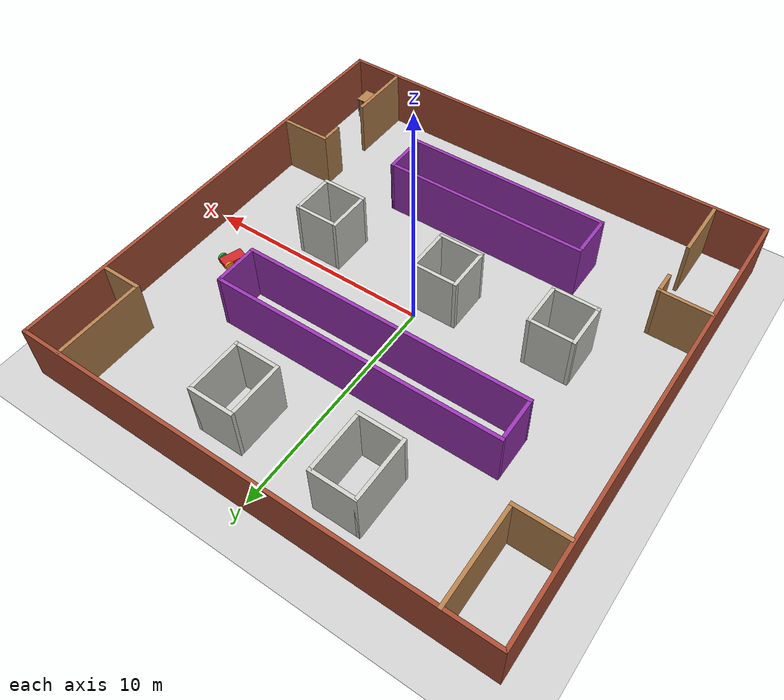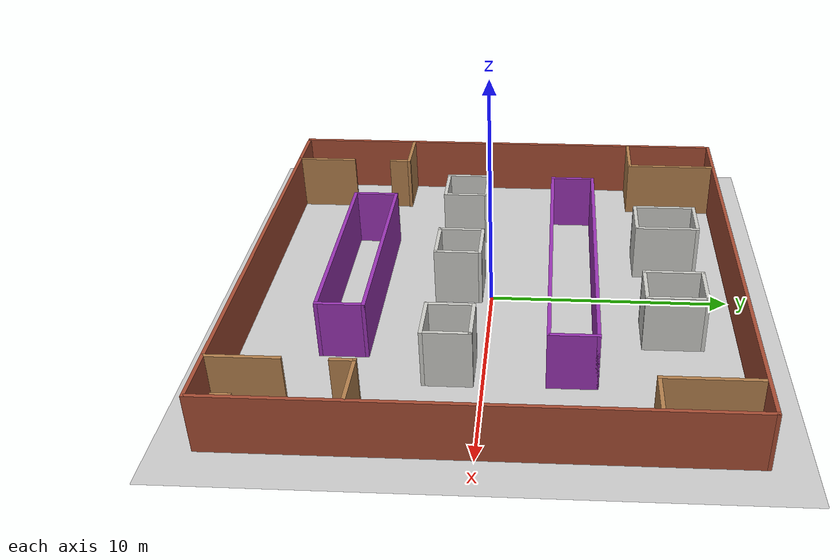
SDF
<sdf version="1.7">
 <world name="default">
  <model name="ground_plane">
   <static>1</static>
   <link name="link">
    <collision name="collision">
     <geometry><plane><normal>0 0 1</normal><size>100 100</size></plane></geometry>
     <surface>
      <contact><collide_bitmask>65535</collide_bitmask></contact>
      <friction><ode><mu>100</mu><mu2>50</mu2></ode></friction>
     </surface>
    </collision>
    <visual name="visual">
     <cast_shadows>0</cast_shadows>
     <geometry><plane><normal>0 0 1</normal><size>100 100</size></plane></geometry>
     <material>
      <script><uri>file://media/materials/scripts/gazebo.material</uri><name>Gazebo/Grey</name></script>
     </material>
    </visual>
   </link>
  </model>
  <model name="house">
   <pose>-0.103922 0.15768 0 0 -0 0</pose>
   <link name="Wall_0">
    <collision name="Wall_0_Collision">
     <geometry><box><size>2 0.15 2.5</size></box></geometry>
     <pose>0 0 1.25 0 -0 0</pose>
    </collision>
    <visual name="Wall_0_Visual">
     <pose>0 0 1.25 0 -0 0</pose>
     <geometry><box><size>2 0.15 2.5</size></box></geometry>
     <material>
      <script><uri>file://media/materials/scripts/gazebo.material</uri><name>Gazebo/CeilingTiled</name></script>
      <ambient>1 1 1 1</ambient>
     </material>
     <meta><layer>0</layer></meta>
    </visual>
    <pose>-0.536584 -2.46607 0 0 -0 0</pose>
   </link>
   <link name="Wall_1">
    <collision name="Wall_1_Collision">
     <geometry><box><size>2 0.15 2.5</size></box></geometry>
     <pose>0 0 1.25 0 -0 0</pose>
    </collision>
    <visual name="Wall_1_Visual">
     <pose>0 0 1.25 0 -0 0</pose>
     <geometry><box><size>2 0.15 2.5</size></box></geometry>
     <material>
      <script><uri>file://media/materials/scripts/gazebo.material</uri><name>Gazebo/CeilingTiled</name></script>
      <ambient>1 1 1 1</ambient>
     </material>
     <meta><layer>0</layer></meta>
    </visual>
    <pose>0.388416 -1.54107 0 0 -0 1.5708</pose>
   </link>
   <link name="Wall_10">
    <collision name="Wall_10_Collision">
     <geometry><box><size>2 0.15 2.5</size></box></geometry>
     <pose>0 0 1.25 0 -0 0</pose>
    </collision>
    <visual name="Wall_10_Visual">
     <pose>0 0 1.25 0 -0 0</pose>
     <geometry><box><size>2 0.15 2.5</size></box></geometry>
     <material>
      <script><uri>file://media/materials/scripts/gazebo.material</uri><name>Gazebo/CeilingTiled</name></script>
      <ambient>1 1 1 1</ambient>
     </material>
     <meta><layer>0</layer></meta>
    </visual>
    <pose>-4.57919 -1.61774 0 0 -0 1.5708</pose>
   </link>
   <link name="Wall_11">
    <collision name="Wall_11_Collision">
     <geometry><box><size>2 0.15 2.5</size></box></geometry>
     <pose>0 0 1.25 0 -0 0</pose>
    </collision>
    <visual name="Wall_11_Visual">
     <pose>0 0 1.25 0 -0 0</pose>
     <geometry><box><size>2 0.15 2.5</size></box></geometry>
     <material>
      <script><uri>file://media/materials/scripts/gazebo.material</uri><name>Gazebo/CeilingTiled</name></script>
      <ambient>1 1 1 1</ambient>
     </material>
     <meta><layer>0</layer></meta>
    </visual>
    <pose>-5.50419 -0.692743 0 0 -0 3.14159</pose>
   </link>
   <link name="Wall_12">
    <collision name="Wall_12_Collision">
     <geometry><box><size>2 0.15 2.5</size></box></geometry>
     <pose>0 0 1.25 0 -0 0</pose>
    </collision>
    <visual name="Wall_12_Visual">
     <pose>0 0 1.25 0 -0 0</pose>
     <geometry><box><size>2 0.15 2.5</size></box></geometry>
     <material>
      <script><uri>file://media/materials/scripts/gazebo.material</uri><name>Gazebo/CeilingTiled</name></script>
      <ambient>1 1 1 1</ambient>
     </material>
     <meta><layer>0</layer></meta>
    </visual>
    <pose>-6.42919 -1.61774 0 0 -0 -1.5708</pose>
   </link>
   <link name="Wall_13">
    <collision name="Wall_13_Collision">
     <geometry><box><size>2 0.15 2.5</size></box></geometry>
     <pose>0 0 1.25 0 -0 0</pose>
    </collision>
    <visual name="Wall_13_Visual">
     <pose>0 0 1.25 0 -0 0</pose>
     <geometry><box><size>2 0.15 2.5</size></box></geometry>
     <material>
      <script><uri>file://media/materials/scripts/gazebo.material</uri><name>Gazebo/CeilingTiled</name></script>
      <ambient>1 1 1 1</ambient>
     </material>
     <meta><layer>0</layer></meta>
    </visual>
    <pose>-5.50419 -2.54274 0 0 -0 0</pose>
   </link>
   <link name="Wall_15">
    <collision name="Wall_15_Collision">
     <geometry><box><size>12.5 0.15 2.5</size></box></geometry>
     <pose>0 0 1.25 0 -0 0</pose>
    </collision>
    <visual name="Wall_15_Visual">
     <pose>0 0 1.25 0 -0 0</pose>
     <geometry><box><size>12.5 0.15 2.5</size></box></geometry>
     <material>
      <lighting>1</lighting>
      <script><uri>file://media/materials/scripts/gazebo.material</uri><name>Gazebo/Purple</name></script>
      <shader type="pixel"><normal_map>__default__</normal_map></shader>
      <ambient>1 0 1 1</ambient>
      <diffuse>1 0 1 1</diffuse>
      <specular>0.1 0.1 0.1 1</specular>
      <emissive>0 0 0 1</emissive>
     </material>
     <meta><layer>0</layer></meta>
    </visual>
    <pose>-0.210973 2.33564 0 0 -0 0</pose>
   </link>
   <link name="Wall_16">
    <collision name="Wall_16_Collision">
     <geometry><box><size>2 0.15 2.5</size></box></geometry>
     <pose>0 0 1.25 0 -0 0</pose>
    </collision>
    <visual name="Wall_16_Visual">
     <pose>0 0 1.25 0 -0 0</pose>
     <geometry><box><size>2 0.15 2.5</size></box></geometry>
     <material>
      <lighting>1</lighting>
      <script><uri>file://media/materials/scripts/gazebo.material</uri><name>Gazebo/Purple</name></script>
      <shader type="pixel"><normal_map>__default__</normal_map></shader>
      <ambient>1 0 1 1</ambient>
      <diffuse>1 0 1 1</diffuse>
      <specular>0.1 0.1 0.1 1</specular>
      <emissive>0 0 0 1</emissive>
     </material>
     <meta><layer>0</layer></meta>
    </visual>
    <pose>5.96403 3.26064 0 0 -0 1.5708</pose>
   </link>
   <link name="Wall_17">
    <collision name="Wall_17_Collision">
     <geometry><box><size>12.5 0.15 2.5</size></box></geometry>
     <pose>0 0 1.25 0 -0 0</pose>
    </collision>
    <visual name="Wall_17_Visual">
     <pose>0 0 1.25 0 -0 0</pose>
     <geometry><box><size>12.5 0.15 2.5</size></box></geometry>
     <material>
      <lighting>1</lighting>
      <script><uri>file://media/materials/scripts/gazebo.material</uri><name>Gazebo/Purple</name></script>
      <shader type="pixel"><normal_map>__default__</normal_map></shader>
      <ambient>1 0 1 1</ambient>
      <diffuse>1 0 1 1</diffuse>
      <specular>0.1 0.1 0.1 1</specular>
      <emissive>0 0 0 1</emissive>
     </material>
     <meta><layer>0</layer></meta>
    </visual>
    <pose>-0.210973 4.18565 0 0 -0 3.14159</pose>
   </link>
   <link name="Wall_18">
    <collision name="Wall_18_Collision">
     <geometry><box><size>2 0.15 2.5</size></box></geometry>
     <pose>0 0 1.25 0 -0 0</pose>
    </collision>
    <visual name="Wall_18_Visual">
     <pose>0 0 1.25 0 -0 0</pose>
     <geometry><box><size>2 0.15 2.5</size></box></geometry>
     <material>
      <lighting>1</lighting>
      <script><uri>file://media/materials/scripts/gazebo.material</uri><name>Gazebo/Purple</name></script>
      <shader type="pixel"><normal_map>__default__</normal_map></shader>
      <ambient>1 0 1 1</ambient>
      <diffuse>1 0 1 1</diffuse>
      <specular>0.1 0.1 0.1 1</specular>
      <emissive>0 0 0 1</emissive>
     </material>
     <meta><layer>0</layer></meta>
    </visual>
    <pose>-6.38597 3.26064 0 0 -0 -1.5708</pose>
   </link>
   <link name="Wall_2">
    <collision name="Wall_2_Collision">
     <geometry><box><size>2 0.15 2.5</size></box></geometry>
     <pose>0 0 1.25 0 -0 0</pose>
    </collision>
    <visual name="Wall_2_Visual">
     <pose>0 0 1.25 0 -0 0</pose>
     <geometry><box><size>2 0.15 2.5</size></box></geometry>
     <material>
      <script><uri>file://media/materials/scripts/gazebo.material</uri><name>Gazebo/CeilingTiled</name></script>
      <ambient>1 1 1 1</ambient>
     </material>
     <meta><layer>0</layer></meta>
    </visual>
    <pose>-0.536584 -0.616074 0 0 -0 3.14159</pose>
   </link>
   <link name="Wall_26">
    <collision name="Wall_26_Collision">
     <geometry><box><size>2 0.15 2.5</size></box></geometry>
     <pose>0 0 1.25 0 -0 0</pose>
    </collision>
    <visual name="Wall_26_Visual">
     <pose>0 0 1.25 0 -0 0</pose>
     <geometry><box><size>2 0.15 2.5</size></box></geometry>
     <material>
      <script><uri>file://media/materials/scripts/gazebo.material</uri><name>Gazebo/CeilingTiled</name></script>
      <ambient>1 1 1 1</ambient>
     </material>
     <meta><layer>0</layer></meta>
    </visual>
    <pose>-2.85415 6.03307 0 0 -0 0</pose>
   </link>
   <link name="Wall_27">
    <collision name="Wall_27_Collision">
     <geometry><box><size>2.75 0.15 2.5</size></box></geometry>
     <pose>0 0 1.25 0 -0 0</pose>
    </collision>
    <visual name="Wall_27_Visual">
     <pose>0 0 1.25 0 -0 0</pose>
     <geometry><box><size>2.75 0.15 2.5</size></box></geometry>
     <material>
      <script><uri>file://media/materials/scripts/gazebo.material</uri><name>Gazebo/CeilingTiled</name></script>
      <ambient>1 1 1 1</ambient>
     </material>
     <meta><layer>0</layer></meta>
    </visual>
    <pose>-1.92915 7.33307 0 0 -0 1.5708</pose>
   </link>
   <link name="Wall_3">
    <collision name="Wall_3_Collision">
     <geometry><box><size>2 0.15 2.5</size></box></geometry>
     <pose>0 0 1.25 0 -0 0</pose>
    </collision>
    <visual name="Wall_3_Visual">
     <pose>0 0 1.25 0 -0 0</pose>
     <geometry><box><size>2 0.15 2.5</size></box></geometry>
     <material>
      <script><uri>file://media/materials/scripts/gazebo.material</uri><name>Gazebo/CeilingTiled</name></script>
      <ambient>1 1 1 1</ambient>
     </material>
     <meta><layer>0</layer></meta>
    </visual>
    <pose>-1.46158 -1.54107 0 0 -0 -1.5708</pose>
   </link>
   <link name="Wall_30">
    <collision name="Wall_30_Collision">
     <geometry><box><size>2.75 0.15 2.5</size></box></geometry>
     <pose>0 0 1.25 0 -0 0</pose>
    </collision>
    <visual name="Wall_30_Visual">
     <pose>0 0 1.25 0 -0 0</pose>
     <geometry><box><size>2.75 0.15 2.5</size></box></geometry>
     <material>
      <script><uri>file://media/materials/scripts/gazebo.material</uri><name>Gazebo/CeilingTiled</name></script>
      <ambient>1 1 1 1</ambient>
     </material>
     <meta><layer>0</layer></meta>
    </visual>
    <pose>-3.77915 7.33307 0 0 -0 1.5708</pose>
   </link>
   <link name="Wall_31">
    <collision name="Wall_31_Collision">
     <geometry><box><size>2 0.15 2.5</size></box></geometry>
     <pose>0 0 1.25 0 -0 0</pose>
    </collision>
    <visual name="Wall_31_Visual">
     <pose>0 0 1.25 0 -0 0</pose>
     <geometry><box><size>2 0.15 2.5</size></box></geometry>
     <material>
      <script><uri>file://media/materials/scripts/gazebo.material</uri><name>Gazebo/CeilingTiled</name></script>
      <ambient>1 1 1 1</ambient>
     </material>
     <meta><layer>0</layer></meta>
    </visual>
    <pose>-2.85415 8.63307 0 0 -0 0</pose>
   </link>
   <link name="Wall_33">
    <collision name="Wall_33_Collision">
     <geometry><box><size>2 0.15 2.5</size></box></geometry>
     <pose>0 0 1.25 0 -0 0</pose>
    </collision>
    <visual name="Wall_33_Visual">
     <pose>0 0 1.25 0 -0 0</pose>
     <geometry><box><size>2 0.15 2.5</size></box></geometry>
     <material>
      <script><uri>file://media/materials/scripts/gazebo.material</uri><name>Gazebo/CeilingTiled</name></script>
      <ambient>1 1 1 1</ambient>
     </material>
     <meta><layer>0</layer></meta>
    </visual>
    <pose>2.46259 6.11826 0 0 -0 0</pose>
   </link>
   <link name="Wall_34">
    <collision name="Wall_34_Collision">
     <geometry><box><size>2.5 0.15 2.5</size></box></geometry>
     <pose>0 0 1.25 0 -0 0</pose>
    </collision>
    <visual name="Wall_34_Visual">
     <pose>0 0 1.25 0 -0 0</pose>
     <geometry><box><size>2.5 0.15 2.5</size></box></geometry>
     <material>
      <script><uri>file://media/materials/scripts/gazebo.material</uri><name>Gazebo/CeilingTiled</name></script>
      <ambient>1 1 1 1</ambient>
     </material>
     <meta><layer>0</layer></meta>
    </visual>
    <pose>3.38759 7.29326 0 0 -0 1.5708</pose>
   </link>
   <link name="Wall_35">
    <collision name="Wall_35_Collision">
     <geometry><box><size>2 0.15 2.5</size></box></geometry>
     <pose>0 0 1.25 0 -0 0</pose>
    </collision>
    <visual name="Wall_35_Visual">
     <pose>0 0 1.25 0 -0 0</pose>
     <geometry><box><size>2 0.15 2.5</size></box></geometry>
     <material>
      <script><uri>file://media/materials/scripts/gazebo.material</uri><name>Gazebo/CeilingTiled</name></script>
      <ambient>1 1 1 1</ambient>
     </material>
     <meta><layer>0</layer></meta>
    </visual>
    <pose>2.46259 8.46826 0 0 -0 3.14159</pose>
   </link>
   <link name="Wall_36">
    <collision name="Wall_36_Collision">
     <geometry><box><size>2.5 0.15 2.5</size></box></geometry>
     <pose>0 0 1.25 0 -0 0</pose>
    </collision>
    <visual name="Wall_36_Visual">
     <pose>0 0 1.25 0 -0 0</pose>
     <geometry><box><size>2.5 0.15 2.5</size></box></geometry>
     <material>
      <script><uri>file://media/materials/scripts/gazebo.material</uri><name>Gazebo/CeilingTiled</name></script>
      <ambient>1 1 1 1</ambient>
     </material>
     <meta><layer>0</layer></meta>
    </visual>
    <pose>1.53759 7.29326 0 0 -0 -1.5708</pose>
   </link>
   <link name="Wall_40">
    <collision name="Wall_40_Collision">
     <geometry><box><size>9 0.15 2.5</size></box></geometry>
     <pose>0 0 1.25 0 -0 0</pose>
    </collision>
    <visual name="Wall_40_Visual">
     <pose>0 0 1.25 0 -0 0</pose>
     <geometry><box><size>9 0.15 2.5</size></box></geometry>
     <material>
      <lighting>1</lighting>
      <script><uri>file://media/materials/scripts/gazebo.material</uri><name>Gazebo/Purple</name></script>
      <shader type="pixel"><normal_map>__default__</normal_map></shader>
      <ambient>1 0 1 1</ambient>
      <diffuse>1 0 1 1</diffuse>
      <specular>0.1 0.1 0.1 1</specular>
      <emissive>0 0 0 1</emissive>
     </material>
     <meta><layer>0</layer></meta>
    </visual>
    <pose>-0.049056 -4.81442 0 0 -0 0</pose>
   </link>
   <link name="Wall_41">
    <collision name="Wall_41_Collision">
     <geometry><box><size>2 0.15 2.5</size></box></geometry>
     <pose>0 0 1.25 0 -0 0</pose>
    </collision>
    <visual name="Wall_41_Visual">
     <pose>0 0 1.25 0 -0 0</pose>
     <geometry><box><size>2 0.15 2.5</size></box></geometry>
     <material>
      <lighting>1</lighting>
      <script><uri>file://media/materials/scripts/gazebo.material</uri><name>Gazebo/Purple</name></script>
      <shader type="pixel"><normal_map>__default__</normal_map></shader>
      <ambient>1 0 1 1</ambient>
      <diffuse>1 0 1 1</diffuse>
      <specular>0.1 0.1 0.1 1</specular>
      <emissive>0 0 0 1</emissive>
     </material>
     <meta><layer>0</layer></meta>
    </visual>
    <pose>4.37594 -5.73942 0 0 -0 -1.5708</pose>
   </link>
   <link name="Wall_42">
    <collision name="Wall_42_Collision">
     <geometry><box><size>9 0.15 2.5</size></box></geometry>
     <pose>0 0 1.25 0 -0 0</pose>
    </collision>
    <visual name="Wall_42_Visual">
     <pose>0 0 1.25 0 -0 0</pose>
     <geometry><box><size>9 0.15 2.5</size></box></geometry>
     <material>
      <lighting>1</lighting>
      <script><uri>file://media/materials/scripts/gazebo.material</uri><name>Gazebo/Purple</name></script>
      <shader type="pixel"><normal_map>__default__</normal_map></shader>
      <ambient>1 0 1 1</ambient>
      <diffuse>1 0 1 1</diffuse>
      <specular>0.1 0.1 0.1 1</specular>
      <emissive>0 0 0 1</emissive>
     </material>
     <meta><layer>0</layer></meta>
    </visual>
    <pose>-0.049056 -6.66442 0 0 -0 3.14159</pose>
   </link>
   <link name="Wall_43">
    <collision name="Wall_43_Collision">
     <geometry><box><size>2 0.15 2.5</size></box></geometry>
     <pose>0 0 1.25 0 -0 0</pose>
    </collision>
    <visual name="Wall_43_Visual">
     <pose>0 0 1.25 0 -0 0</pose>
     <geometry><box><size>2 0.15 2.5</size></box></geometry>
     <material>
      <lighting>1</lighting>
      <script><uri>file://media/materials/scripts/gazebo.material</uri><name>Gazebo/Purple</name></script>
      <shader type="pixel"><normal_map>__default__</normal_map></shader>
      <ambient>1 0 1 1</ambient>
      <diffuse>1 0 1 1</diffuse>
      <specular>0.1 0.1 0.1 1</specular>
      <emissive>0 0 0 1</emissive>
     </material>
     <meta><layer>0</layer></meta>
    </visual>
    <pose>-4.47406 -5.73942 0 0 -0 1.5708</pose>
   </link>
   <link name="Wall_5">
    <collision name="Wall_5_Collision">
     <geometry><box><size>2 0.15 2.5</size></box></geometry>
     <pose>0 0 1.25 0 -0 0</pose>
    </collision>
    <visual name="Wall_5_Visual">
     <pose>0 0 1.25 0 -0 0</pose>
     <geometry><box><size>2 0.15 2.5</size></box></geometry>
     <material>
      <script><uri>file://media/materials/scripts/gazebo.material</uri><name>Gazebo/CeilingTiled</name></script>
      <ambient>1 1 1 1</ambient>
     </material>
     <meta><layer>0</layer></meta>
    </visual>
    <pose>5.11049 -0.561674 0 0 -0 0</pose>
   </link>
   <link name="Wall_51">
    <collision name="Wall_51_Collision">
     <geometry><box><size>2.91936 0.15 2.5</size></box></geometry>
     <pose>0 0 1.25 0 -0 0</pose>
    </collision>
    <visual name="Wall_51_Visual">
     <pose>0 0 1.25 0 -0 0</pose>
     <geometry><box><size>2.91936 0.15 2.5</size></box></geometry>
     <material>
      <script><uri>file://media/materials/scripts/gazebo.material</uri><name>Gazebo/Wood</name></script>
      <ambient>1 1 1 1</ambient>
     </material>
     <meta><layer>0</layer></meta>
    </visual>
    <pose>7.806 -8.61541 0 0 -0 1.5708</pose>
   </link>
   <link name="Wall_53">
    <collision name="Wall_53_Collision">
     <geometry><box><size>1 0.15 2.5</size></box></geometry>
     <pose>0 0 1.25 0 -0 0</pose>
    </collision>
    <visual name="Wall_53_Visual">
     <pose>0 0 1.25 0 -0 0</pose>
     <geometry><box><size>1 0.15 2.5</size></box></geometry>
     <material>
      <script><uri>file://media/materials/scripts/gazebo.material</uri><name>Gazebo/Wood</name></script>
      <ambient>1 1 1 1</ambient>
     </material>
     <meta><layer>0</layer></meta>
    </visual>
    <pose>7.80558 -4.95555 0 0 -0 1.5708</pose>
   </link>
   <link name="Wall_54">
    <collision name="Wall_54_Collision">
     <geometry><box><size>2.25 0.15 2.5</size></box></geometry>
     <pose>0 0 1.25 0 -0 0</pose>
    </collision>
    <visual name="Wall_54_Visual">
     <pose>0 0 1.25 0 -0 0</pose>
     <geometry><box><size>2.25 0.15 2.5</size></box></geometry>
     <material>
      <script><uri>file://media/materials/scripts/gazebo.material</uri><name>Gazebo/Wood</name></script>
      <ambient>1 1 1 1</ambient>
     </material>
     <meta><layer>0</layer></meta>
    </visual>
    <pose>8.85558 -4.53055 0 0 -0 0</pose>
   </link>
   <link name="Wall_6">
    <collision name="Wall_6_Collision">
     <geometry><box><size>2 0.15 2.5</size></box></geometry>
     <pose>0 0 1.25 0 -0 0</pose>
    </collision>
    <visual name="Wall_6_Visual">
     <pose>0 0 1.25 0 -0 0</pose>
     <geometry><box><size>2 0.15 2.5</size></box></geometry>
     <material>
      <script><uri>file://media/materials/scripts/gazebo.material</uri><name>Gazebo/CeilingTiled</name></script>
      <ambient>1 1 1 1</ambient>
     </material>
     <meta><layer>0</layer></meta>
    </visual>
    <pose>6.03549 -1.48667 0 0 -0 -1.5708</pose>
   </link>
   <link name="Wall_60">
    <collision name="Wall_60_Collision">
     <geometry><box><size>2.77266 0.15 2.5</size></box></geometry>
     <pose>0 0 1.25 0 -0 0</pose>
    </collision>
    <visual name="Wall_60_Visual">
     <pose>0 0 1.25 0 -0 0</pose>
     <geometry><box><size>2.77266 0.15 2.5</size></box></geometry>
     <material>
      <script><uri>file://media/materials/scripts/gazebo.material</uri><name>Gazebo/Wood</name></script>
      <ambient>1 1 1 1</ambient>
     </material>
     <meta><layer>0</layer></meta>
    </visual>
    <pose>-7.847 -8.68841 0 0 -0 1.5708</pose>
   </link>
   <link name="Wall_62">
    <collision name="Wall_62_Collision">
     <geometry><box><size>1 0.15 2.5</size></box></geometry>
     <pose>0 0 1.25 0 -0 0</pose>
    </collision>
    <visual name="Wall_62_Visual">
     <pose>0 0 1.25 0 -0 0</pose>
     <geometry><box><size>1 0.15 2.5</size></box></geometry>
     <material>
      <script><uri>file://media/materials/scripts/gazebo.material</uri><name>Gazebo/Wood</name></script>
      <ambient>1 1 1 1</ambient>
     </material>
     <meta><layer>0</layer></meta>
    </visual>
    <pose>-7.84711 -5.10225 0 0 -0 1.5708</pose>
   </link>
   <link name="Wall_63">
    <collision name="Wall_63_Collision">
     <geometry><box><size>2.25 0.15 2.5</size></box></geometry>
     <pose>0 0 1.25 0 -0 0</pose>
    </collision>
    <visual name="Wall_63_Visual">
     <pose>0 0 1.25 0 -0 0</pose>
     <geometry><box><size>2.25 0.15 2.5</size></box></geometry>
     <material>
      <script><uri>file://media/materials/scripts/gazebo.material</uri><name>Gazebo/Wood</name></script>
      <ambient>1 1 1 1</ambient>
     </material>
     <meta><layer>0</layer></meta>
    </visual>
    <pose>-8.89711 -4.67725 0 0 -0 3.14159</pose>
   </link>
   <link name="Wall_66">
    <collision name="Wall_66_Collision">
     <geometry><box><size>4.1266 0.15 2.5</size></box></geometry>
     <pose>0 0 1.25 0 -0 0</pose>
    </collision>
    <visual name="Wall_66_Visual">
     <pose>0 0 1.25 0 -0 0</pose>
     <geometry><box><size>4.1266 0.15 2.5</size></box></geometry>
     <material>
      <script><uri>file://media/materials/scripts/gazebo.material</uri><name>Gazebo/Wood</name></script>
      <ambient>1 1 1 1</ambient>
     </material>
     <meta><layer>0</layer></meta>
    </visual>
    <pose>-7.824 8.01159 0 0 -0 -1.5708</pose>
   </link>
   <link name="Wall_67">
    <collision name="Wall_67_Collision">
     <geometry><box><size>2.25 0.15 2.5</size></box></geometry>
     <pose>0 0 1.25 0 -0 0</pose>
    </collision>
    <visual name="Wall_67_Visual">
     <pose>0 0 1.25 0 -0 0</pose>
     <geometry><box><size>2.25 0.15 2.5</size></box></geometry>
     <material>
      <script><uri>file://media/materials/scripts/gazebo.material</uri><name>Gazebo/Wood</name></script>
      <ambient>1 1 1 1</ambient>
     </material>
     <meta><layer>0</layer></meta>
    </visual>
    <pose>-8.87421 6.02329 0 0 -0 3.1414</pose>
   </link>
   <link name="Wall_69">
    <collision name="Wall_69_Collision">
     <geometry><box><size>3.94656 0.15 2.5</size></box></geometry>
     <pose>0 0 1.25 0 -0 0</pose>
    </collision>
    <visual name="Wall_69_Visual">
     <pose>0 0 1.25 0 -0 0</pose>
     <geometry><box><size>3.94656 0.15 2.5</size></box></geometry>
     <material>
      <script><uri>file://media/materials/scripts/gazebo.material</uri><name>Gazebo/Wood</name></script>
      <ambient>1 1 1 1</ambient>
     </material>
     <meta><layer>0</layer></meta>
    </visual>
    <pose>8.266 8.10159 0 0 -0 -1.5708</pose>
   </link>
   <link name="Wall_7">
    <collision name="Wall_7_Collision">
     <geometry><box><size>2 0.15 2.5</size></box></geometry>
     <pose>0 0 1.25 0 -0 0</pose>
    </collision>
    <visual name="Wall_7_Visual">
     <pose>0 0 1.25 0 -0 0</pose>
     <geometry><box><size>2 0.15 2.5</size></box></geometry>
     <material>
      <script><uri>file://media/materials/scripts/gazebo.material</uri><name>Gazebo/CeilingTiled</name></script>
      <ambient>1 1 1 1</ambient>
     </material>
     <meta><layer>0</layer></meta>
    </visual>
    <pose>5.11049 -2.41167 0 0 -0 3.14159</pose>
   </link>
   <link name="Wall_72">
    <collision name="Wall_72_Collision">
     <geometry><box><size>1.75 0.15 2.5</size></box></geometry>
     <pose>0 0 1.25 0 -0 0</pose>
    </collision>
    <visual name="Wall_72_Visual">
     <pose>0 0 1.25 0 -0 0</pose>
     <geometry><box><size>1.75 0.15 2.5</size></box></geometry>
     <material>
      <script><uri>file://media/materials/scripts/gazebo.material</uri><name>Gazebo/Wood</name></script>
      <ambient>1 1 1 1</ambient>
     </material>
     <meta><layer>0</layer></meta>
    </visual>
    <pose>9.06622 6.20331 0 0 -0 0.000273</pose>
   </link>
   <link name="Wall_75">
    <collision name="Wall_75_Collision">
     <geometry><box><size>20.15 0.15 2.5</size></box></geometry>
     <pose>0 0 1.25 0 -0 0</pose>
    </collision>
    <visual name="Wall_75_Visual">
     <pose>0 0 1.25 0 -0 0</pose>
     <geometry><box><size>20.15 0.15 2.5</size></box></geometry>
     <material>
      <script><uri>file://media/materials/scripts/gazebo.material</uri><name>Gazebo/Bricks</name></script>
      <ambient>1 1 1 1</ambient>
     </material>
     <meta><layer>0</layer></meta>
    </visual>
    <pose>0 -9.99991 0 0 -0 0</pose>
   </link>
   <link name="Wall_77">
    <collision name="Wall_77_Collision">
     <geometry><box><size>20.15 0.15 2.5</size></box></geometry>
     <pose>0 0 1.25 0 -0 0</pose>
    </collision>
    <visual name="Wall_77_Visual">
     <pose>0 0 1.25 0 -0 0</pose>
     <geometry><box><size>20.15 0.15 2.5</size></box></geometry>
     <material>
      <script><uri>file://media/materials/scripts/gazebo.material</uri><name>Gazebo/Bricks</name></script>
      <ambient>1 1 1 1</ambient>
     </material>
     <meta><layer>0</layer></meta>
    </visual>
    <pose>10 8.9e-05 0 0 -0 1.5708</pose>
   </link>
   <link name="Wall_79">
    <collision name="Wall_79_Collision">
     <geometry><box><size>20.15 0.15 2.5</size></box></geometry>
     <pose>0 0 1.25 0 -0 0</pose>
    </collision>
    <visual name="Wall_79_Visual">
     <pose>0 0 1.25 0 -0 0</pose>
     <geometry><box><size>20.15 0.15 2.5</size></box></geometry>
     <material>
      <script><uri>file://media/materials/scripts/gazebo.material</uri><name>Gazebo/Bricks</name></script>
      <ambient>1 1 1 1</ambient>
     </material>
     <meta><layer>0</layer></meta>
    </visual>
    <pose>-10 8.9e-05 0 0 -0 1.5708</pose>
   </link>
   <link name="Wall_8">
    <collision name="Wall_8_Collision">
     <geometry><box><size>2 0.15 2.5</size></box></geometry>
     <pose>0 0 1.25 0 -0 0</pose>
    </collision>
    <visual name="Wall_8_Visual">
     <pose>0 0 1.25 0 -0 0</pose>
     <geometry><box><size>2 0.15 2.5</size></box></geometry>
     <material>
      <script><uri>file://media/materials/scripts/gazebo.material</uri><name>Gazebo/CeilingTiled</name></script>
      <ambient>1 1 1 1</ambient>
     </material>
     <meta><layer>0</layer></meta>
    </visual>
    <pose>4.18549 -1.48667 0 0 -0 1.5708</pose>
   </link>
   <link name="Wall_81">
    <collision name="Wall_81_Collision">
     <geometry><box><size>20.15 0.15 2.5</size></box></geometry>
     <pose>0 0 1.25 0 -0 0</pose>
    </collision>
    <visual name="Wall_81_Visual">
     <pose>0 0 1.25 0 -0 0</pose>
     <geometry><box><size>20.15 0.15 2.5</size></box></geometry>
     <material>
      <script><uri>file://media/materials/scripts/gazebo.material</uri><name>Gazebo/Bricks</name></script>
      <ambient>1 1 1 1</ambient>
     </material>
     <meta><layer>0</layer></meta>
    </visual>
    <pose>0 10.0001 0 0 -0 0</pose>
   </link>
   <static>1</static>
  </model>
  <model name="wagon_0">
   <link name="chassis">
    <inertial>
     <mass>1</mass>
     <inertia>
      <ixx>0.166667</ixx>
      <ixy>0</ixy>
      <ixz>0</ixz>
      <iyy>0.166667</iyy>
      <iyz>0</iyz>
      <izz>0.166667</izz>
     </inertia>
    </inertial>
    <pose>0.09823 -0.107427 0.483928 0 -0 0</pose>
    <visual name="visual">
     <geometry><box><size>0.5 1 0.2</size></box></geometry>
     <material>
      <lighting>1</lighting>
      <script><uri>file://media/materials/scripts/gazebo.material</uri><name>Gazebo/Red</name></script>
      <shader type="pixel"><normal_map>__default__</normal_map></shader>
      <ambient>1 0 0 1</ambient>
      <diffuse>1 0 0 1</diffuse>
      <specular>0.1 0.1 0.1 1</specular>
      <emissive>0 0 0 1</emissive>
     </material>
    </visual>
    <collision name="collision">
     <geometry><box><size>0.5 1 0.2</size></box></geometry>
     <surface>
      <friction>
       <ode><mu>1</mu><mu2>1</mu2><fdir1>0 0 0</fdir1><slip1>0</slip1><slip2>0</slip2></ode>
       <torsional>
        <coefficient>1</coefficient>
        <patch_radius>0</patch_radius>
        <surface_radius>0</surface_radius>
        <use_patch_radius>1</use_patch_radius>
        <ode><slip>0</slip></ode>
       </torsional>
      </friction>
      <bounce><restitution_coefficient>0</restitution_coefficient><threshold>1e+06</threshold></bounce>
      <contact>
       <collide_without_contact>0</collide_without_contact>
       <collide_without_contact_bitmask>1</collide_without_contact_bitmask>
       <collide_bitmask>1</collide_bitmask>
       <ode>
        <soft_cfm>0</soft_cfm>
        <soft_erp>0.2</soft_erp>
        <kp>1e+13</kp>
        <kd>1</kd>
        <max_vel>0.01</max_vel>
        <min_depth>0</min_depth>
       </ode>
       <bullet>
        <split_impulse>1</split_impulse>
        <split_impulse_penetration_threshold>-0.01</split_impulse_penetration_threshold>
        <soft_cfm>0</soft_cfm>
        <soft_erp>0.2</soft_erp>
        <kp>1e+13</kp>
        <kd>1</kd>
       </bullet>
      </contact>
     </surface>
    </collision>
   </link>
   <link name="caster">
    <inertial>
     <mass>1</mass>
     <inertia><ixx>0.1</ixx><ixy>0</ixy><ixz>0</ixz><iyy>0.1</iyy><iyz>0</iyz><izz>0.1</izz></inertia>
    </inertial>
    <pose>0.07823 0.252573 0.387496 0 -0 0</pose>
    <visual name="visual">
     <geometry><sphere><radius>0.1</radius></sphere></geometry>
     <material>
      <lighting>1</lighting>
      <script><uri>file://media/materials/scripts/gazebo.material</uri><name>Gazebo/Blue</name></script>
      <shader type="pixel"><normal_map>__default__</normal_map></shader>
      <ambient>0 0 1 1</ambient>
      <diffuse>0 0 1 1</diffuse>
      <specular>0.1 0.1 0.1 1</specular>
      <emissive>0 0 0 1</emissive>
     </material>
    </visual>
    <collision name="collision">
     <geometry><sphere><radius>0.1</radius></sphere></geometry>
     <surface>
      <friction>
       <ode><mu>1</mu><mu2>1</mu2><fdir1>0 0 0</fdir1><slip1>0</slip1><slip2>0</slip2></ode>
       <torsional>
        <coefficient>1</coefficient>
        <patch_radius>0</patch_radius>
        <surface_radius>0</surface_radius>
        <use_patch_radius>1</use_patch_radius>
        <ode><slip>0</slip></ode>
       </torsional>
      </friction>
      <bounce><restitution_coefficient>0</restitution_coefficient><threshold>1e+06</threshold></bounce>
      <contact>
       <collide_without_contact>0</collide_without_contact>
       <collide_without_contact_bitmask>1</collide_without_contact_bitmask>
       <collide_bitmask>1</collide_bitmask>
       <ode>
        <soft_cfm>0</soft_cfm>
        <soft_erp>0.2</soft_erp>
        <kp>1e+13</kp>
        <kd>1</kd>
        <max_vel>0.01</max_vel>
        <min_depth>0</min_depth>
       </ode>
       <bullet>
        <split_impulse>1</split_impulse>
        <split_impulse_penetration_threshold>-0.01</split_impulse_penetration_threshold>
        <soft_cfm>0</soft_cfm>
        <soft_erp>0.2</soft_erp>
        <kp>1e+13</kp>
        <kd>1</kd>
       </bullet>
      </contact>
     </surface>
    </collision>
   </link>
   <link name="right_wheel">
    <inertial>
     <mass>1</mass>
     <inertia><ixx>0.145833</ixx><ixy>0</ixy><ixz>0</ixz><iyy>0.145833</iyy><iyz>0</iyz><izz>0.125</izz></inertia>
    </inertial>
    <pose>0.398249 -0.407428 0.483928 0 -0 0</pose>
    <visual name="visual">
     <pose>0 0 0 0 1.5707 0</pose>
     <geometry><cylinder><radius>0.2</radius><length>0.1</length></cylinder></geometry>
     <material>
      <lighting>1</lighting>
      <script><uri>file://media/materials/scripts/gazebo.material</uri><name>Gazebo/Orange</name></script>
      <shader type="pixel"><normal_map>__default__</normal_map></shader>
      <ambient>1 0.509 0.047 1</ambient>
      <diffuse>1 0.509 0.047 1</diffuse>
      <specular>0.5 0.5 0.5 1</specular>
      <emissive>0 0 0 1</emissive>
     </material>
    </visual>
    <collision name="collision">
     <pose>0 0 0 0 1.5707 0</pose>
     <geometry><cylinder><radius>0.2</radius><length>0.1</length></cylinder></geometry>
     <surface>
      <friction>
       <ode><mu>1</mu><mu2>1</mu2><fdir1>0 0 0</fdir1><slip1>0</slip1><slip2>0</slip2></ode>
       <torsional>
        <coefficient>1</coefficient>
        <patch_radius>0</patch_radius>
        <surface_radius>0</surface_radius>
        <use_patch_radius>1</use_patch_radius>
        <ode><slip>0</slip></ode>
       </torsional>
      </friction>
      <bounce><restitution_coefficient>0</restitution_coefficient><threshold>1e+06</threshold></bounce>
      <contact>
       <collide_without_contact>0</collide_without_contact>
       <collide_without_contact_bitmask>1</collide_without_contact_bitmask>
       <collide_bitmask>1</collide_bitmask>
       <ode>
        <soft_cfm>0</soft_cfm>
        <soft_erp>0.2</soft_erp>
        <kp>1e+13</kp>
        <kd>1</kd>
        <max_vel>0.01</max_vel>
        <min_depth>0</min_depth>
       </ode>
       <bullet>
        <split_impulse>1</split_impulse>
        <split_impulse_penetration_threshold>-0.01</split_impulse_penetration_threshold>
        <soft_cfm>0</soft_cfm>
        <soft_erp>0.2</soft_erp>
        <kp>1e+13</kp>
        <kd>1</kd>
       </bullet>
      </contact>
     </surface>
    </collision>
   </link>
   <link name="left_wheel">
    <inertial>
     <mass>1</mass>
     <inertia><ixx>0.145833</ixx><ixy>0</ixy><ixz>0</ixz><iyy>0.145833</iyy><iyz>0</iyz><izz>0.125</izz></inertia>
    </inertial>
    <pose>-0.20179 -0.407428 0.483928 0 -0 0</pose>
    <visual name="visual">
     <pose>0 0 0 0 1.5707 0</pose>
     <geometry><cylinder><radius>0.2</radius><length>0.1</length></cylinder></geometry>
     <material>
      <lighting>1</lighting>
      <script><uri>file://media/materials/scripts/gazebo.material</uri><name>Gazebo/Green</name></script>
      <shader type="pixel"><normal_map>__default__</normal_map></shader>
      <ambient>0 1 0 1</ambient>
      <diffuse>0 1 0 1</diffuse>
      <specular>0.1 0.1 0.1 1</specular>
      <emissive>0 0 0 1</emissive>
     </material>
    </visual>
    <collision name="collision">
     <pose>0 0 0 0 1.5707 0</pose>
     <geometry><cylinder><radius>0.2</radius><length>0.1</length></cylinder></geometry>
     <surface>
      <friction>
       <ode><mu>1</mu><mu2>1</mu2><fdir1>0 0 0</fdir1><slip1>0</slip1><slip2>0</slip2></ode>
       <torsional>
        <coefficient>1</coefficient>
        <patch_radius>0</patch_radius>
        <surface_radius>0</surface_radius>
        <use_patch_radius>1</use_patch_radius>
        <ode><slip>0</slip></ode>
       </torsional>
      </friction>
      <bounce><restitution_coefficient>0</restitution_coefficient><threshold>1e+06</threshold></bounce>
      <contact>
       <collide_without_contact>0</collide_without_contact>
       <collide_without_contact_bitmask>1</collide_without_contact_bitmask>
       <collide_bitmask>1</collide_bitmask>
       <ode>
        <soft_cfm>0</soft_cfm>
        <soft_erp>0.2</soft_erp>
        <kp>1e+13</kp>
        <kd>1</kd>
        <max_vel>0.01</max_vel>
        <min_depth>0</min_depth>
       </ode>
       <bullet>
        <split_impulse>1</split_impulse>
        <split_impulse_penetration_threshold>-0.01</split_impulse_penetration_threshold>
        <soft_cfm>0</soft_cfm>
        <soft_erp>0.2</soft_erp>
        <kp>1e+13</kp>
        <kd>1</kd>
       </bullet>
      </contact>
     </surface>
    </collision>
   </link>
   <joint name="chassis_JOINT_0" type="ball">
    <parent>chassis</parent>
    <child>caster</child>
    <physics>
     <ode><limit><cfm>0</cfm><erp>0.2</erp></limit><suspension><cfm>0</cfm><erp>0.2</erp></suspension></ode>
    </physics>
   </joint>
   <joint name="chassis_JOINT_1" type="revolute">
    <parent>chassis</parent>
    <child>right_wheel</child>
    <axis>
     <xyz>1 0 0</xyz>
     <limit>
      <lower>-1.79769e+308</lower>
      <upper>1.79769e+308</upper>
      <effort>-1</effort>
      <velocity>-1</velocity>
     </limit>
     <dynamics>
      <spring_reference>0</spring_reference>
      <spring_stiffness>0</spring_stiffness>
      <damping>0</damping>
     </dynamics>
    </axis>
    <physics>
     <ode><limit><cfm>0</cfm><erp>0.2</erp></limit><suspension><cfm>0</cfm><erp>0.2</erp></suspension></ode>
    </physics>
   </joint>
   <joint name="chassis_JOINT_2" type="revolute">
    <parent>chassis</parent>
    <child>left_wheel</child>
    <axis>
     <xyz>1 0 0</xyz>
     <limit>
      <lower>-1.79769e+308</lower>
      <upper>1.79769e+308</upper>
      <effort>-1</effort>
      <velocity>-1</velocity>
     </limit>
     <dynamics>
      <spring_reference>0</spring_reference>
      <spring_stiffness>0</spring_stiffness>
      <damping>0</damping>
     </dynamics>
    </axis>
    <physics>
     <ode><limit><cfm>0</cfm><erp>0.2</erp></limit><suspension><cfm>0</cfm><erp>0.2</erp></suspension></ode>
    </physics>
   </joint>
   <static>0</static>
   <pose>7.96289 1.70434 -0.286124 -0.005411 -0 2.80696</pose>
  </model>
  <model name="bookshelf">
   <static>1</static>
   <link name="link">
    <inertial><mass>1</mass></inertial>
    <collision name="back">
     <pose>0 0.005 0.6 0 -0 0</pose>
     <geometry><box><size>0.9 0.01 1.2</size></box></geometry>
    </collision>
    <visual name="visual1">
     <pose>0 0.005 0.6 0 -0 0</pose>
     <geometry><box><size>0.9 0.01 1.2</size></box></geometry>
     <material>
      <script><uri>file://media/materials/scripts/gazebo.material</uri><name>Gazebo/Wood</name></script>
     </material>
    </visual>
    <collision name="left_side">
     <pose>0.45 -0.195 0.6 0 -0 0</pose>
     <geometry><box><size>0.02 0.4 1.2</size></box></geometry>
    </collision>
    <visual name="visual2">
     <pose>0.45 -0.195 0.6 0 -0 0</pose>
     <geometry><box><size>0.02 0.4 1.2</size></box></geometry>
     <material>
      <script><uri>file://media/materials/scripts/gazebo.material</uri><name>Gazebo/Wood</name></script>
     </material>
    </visual>
    <collision name="right_side">
     <pose>-0.45 -0.195 0.6 0 -0 0</pose>
     <geometry><box><size>0.02 0.4 1.2</size></box></geometry>
    </collision>
    <visual name="visual3">
     <pose>-0.45 -0.195 0.6 0 -0 0</pose>
     <geometry><box><size>0.02 0.4 1.2</size></box></geometry>
     <material>
      <script><uri>file://media/materials/scripts/gazebo.material</uri><name>Gazebo/Wood</name></script>
     </material>
    </visual>
    <collision name="bottom">
     <pose>0 -0.195 0.03 0 -0 0</pose>
     <geometry><box><size>0.88 0.4 0.06</size></box></geometry>
    </collision>
    <visual name="visual4">
     <pose>0 -0.195 0.03 0 -0 0</pose>
     <geometry><box><size>0.88 0.4 0.06</size></box></geometry>
     <material>
      <script><uri>file://media/materials/scripts/gazebo.material</uri><name>Gazebo/Wood</name></script>
     </material>
    </visual>
    <collision name="top">
     <pose>0 -0.195 1.19 0 -0 0</pose>
     <geometry><box><size>0.88 0.4 0.02</size></box></geometry>
    </collision>
    <visual name="visual5">
     <pose>0 -0.195 1.19 0 -0 0</pose>
     <geometry><box><size>0.88 0.4 0.02</size></box></geometry>
     <material>
      <script><uri>file://media/materials/scripts/gazebo.material</uri><name>Gazebo/Wood</name></script>
     </material>
    </visual>
    <collision name="low_shelf">
     <pose>0 -0.195 0.43 0 -0 0</pose>
     <geometry><box><size>0.88 0.4 0.02</size></box></geometry>
    </collision>
    <visual name="visual6">
     <pose>0 -0.195 0.43 0 -0 0</pose>
     <geometry><box><size>0.88 0.4 0.02</size></box></geometry>
     <material>
      <script><uri>file://media/materials/scripts/gazebo.material</uri><name>Gazebo/Wood</name></script>
     </material>
    </visual>
    <collision name="high_shelf">
     <pose>0 -0.195 0.8 0 -0 0</pose>
     <geometry><box><size>0.88 0.4 0.02</size></box></geometry>
    </collision>
    <visual name="visual7">
     <pose>0 -0.195 0.8 0 -0 0</pose>
     <geometry><box><size>0.88 0.4 0.02</size></box></geometry>
     <material>
      <script><uri>file://media/materials/scripts/gazebo.material</uri><name>Gazebo/Wood</name></script>
     </material>
    </visual>
   </link>
   <pose>9.3519 -4.45248 0 0 -0 0</pose>
  </model>
  <model name="table_0">
   <static>1</static>
   <link name="link">
    <collision name="surface">
     <pose>0 0 1 0 -0 0</pose>
     <geometry><box><size>1.5 0.8 0.03</size></box></geometry>
     <surface><friction><ode><mu>0.6</mu><mu2>0.6</mu2></ode></friction></surface>
    </collision>
    <visual name="visual1">
     <pose>0 0 1 0 -0 0</pose>
     <geometry><box><size>1.5 0.8 0.03</size></box></geometry>
     <material>
      <script><uri>file://media/materials/scripts/gazebo.material</uri><name>Gazebo/Wood</name></script>
     </material>
    </visual>
    <collision name="front_left_leg">
     <pose>0.68 0.38 0.5 0 -0 0</pose>
     <geometry><cylinder><radius>0.02</radius><length>1</length></cylinder></geometry>
    </collision>
    <visual name="front_left_leg">
     <pose>0.68 0.38 0.5 0 -0 0</pose>
     <geometry><cylinder><radius>0.02</radius><length>1</length></cylinder></geometry>
     <material>
      <script><uri>file://media/materials/scripts/gazebo.material</uri><name>Gazebo/Grey</name></script>
     </material>
    </visual>
    <collision name="front_right_leg">
     <pose>0.68 -0.38 0.5 0 -0 0</pose>
     <geometry><cylinder><radius>0.02</radius><length>1</length></cylinder></geometry>
    </collision>
    <visual name="front_right_leg">
     <pose>0.68 -0.38 0.5 0 -0 0</pose>
     <geometry><cylinder><radius>0.02</radius><length>1</length></cylinder></geometry>
     <material>
      <script><uri>file://media/materials/scripts/gazebo.material</uri><name>Gazebo/Grey</name></script>
     </material>
    </visual>
    <collision name="back_right_leg">
     <pose>-0.68 -0.38 0.5 0 -0 0</pose>
     <geometry><cylinder><radius>0.02</radius><length>1</length></cylinder></geometry>
    </collision>
    <visual name="back_right_leg">
     <pose>-0.68 -0.38 0.5 0 -0 0</pose>
     <geometry><cylinder><radius>0.02</radius><length>1</length></cylinder></geometry>
     <material>
      <script><uri>file://media/materials/scripts/gazebo.material</uri><name>Gazebo/Grey</name></script>
     </material>
    </visual>
    <collision name="back_left_leg">
     <pose>-0.68 0.38 0.5 0 -0 0</pose>
     <geometry><cylinder><radius>0.02</radius><length>1</length></cylinder></geometry>
    </collision>
    <visual name="back_left_leg">
     <pose>-0.68 0.38 0.5 0 -0 0</pose>
     <geometry><cylinder><radius>0.02</radius><length>1</length></cylinder></geometry>
     <material>
      <script><uri>file://media/materials/scripts/gazebo.material</uri><name>Gazebo/Grey</name></script>
     </material>
    </visual>
   </link>
   <pose>8.71232 -9.32715 0 0 -0 0</pose>
  </model>
 </world>
</sdf>
